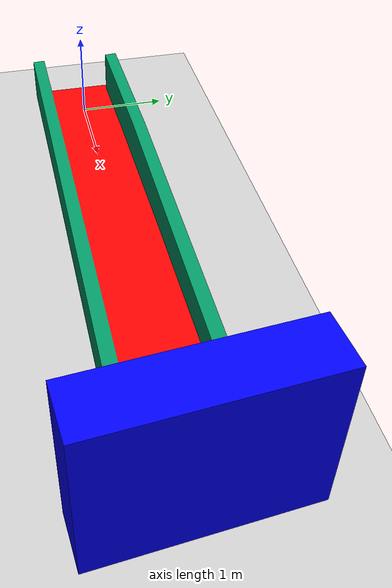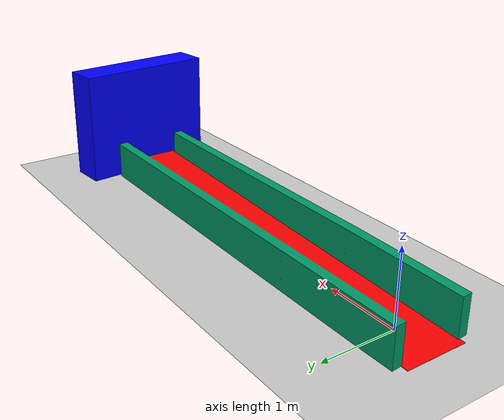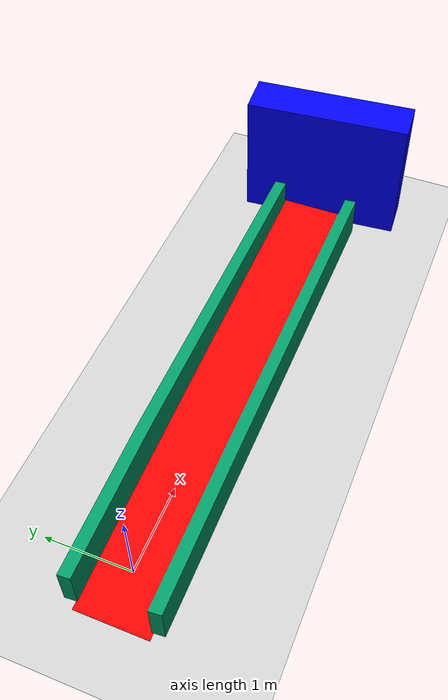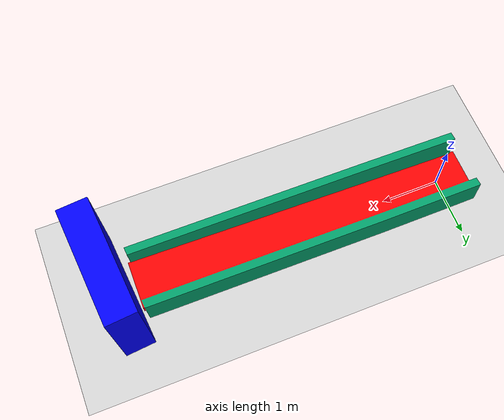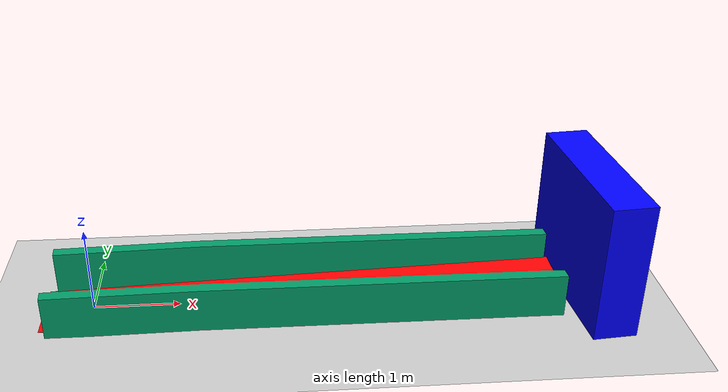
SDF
<sdf version="1.6">
 <world name="default">
  <scene><ambient>0.4 0.4 0.4 1</ambient><background>0.7 0.7 0.7 1</background><shadows>1</shadows></scene>
  <light name="sun" type="directional">
   <pose>0 0 10 0 -0 0</pose>
   <diffuse>0.8 0.8 0.8 1</diffuse>
   <specular>0.2 0.2 0.2 1</specular>
   <attenuation>
    <range>1000</range>
    <constant>0.9</constant>
    <linear>0.01</linear>
    <quadratic>0.001</quadratic>
   </attenuation>
   <direction>-0.5 0.1 -0.9</direction>
  </light>
  <model name="ground_plane">
   <static>1</static>
   <link name="link">
    <collision name="collision">
     <geometry><plane><normal>0 0 1</normal><size>100 100</size></plane></geometry>
     <surface>
      <contact><collide_bitmask>65535</collide_bitmask></contact>
      <friction><ode><mu>100</mu><mu2>50</mu2></ode></friction>
     </surface>
    </collision>
    <visual name="visual">
     <cast_shadows>0</cast_shadows>
     <geometry><plane><normal>0 0 1</normal><size>100 100</size></plane></geometry>
     <material>
      <script><uri>file://media/materials/scripts/gazebo.material</uri><name>Gazebo/Grey</name></script>
     </material>
    </visual>
   </link>
  </model>
  <model name="caixa_azul">
   <link name="link">
    <inertial>
     <mass>5.24856</mass>
     <inertia><ixx>1.24839</ixx><ixy>0</ixy><ixz>0</ixz><iyy>2.87035</iyy><iyz>0</iyz><izz>1.84376</izz></inertia>
    </inertial>
    <visual name="visual">
     <geometry><box><size>1.99045 0.503545 1.61267</size></box></geometry>
     <material>
      <script><name>Gazebo/Grey</name><uri>file://media/materials/scripts/gazebo.material</uri></script>
      <shader type="vertex"><normal_map>__default__</normal_map></shader>
      <ambient>0 0 1 1</ambient>
      <diffuse>0 0 1 1</diffuse>
      <specular>0 0 1 1</specular>
      <emissive>0 0 1 1</emissive>
     </material>
    </visual>
    <collision name="collision">
     <geometry><box><size>1.99045 0.503545 1.61267</size></box></geometry>
     <surface>
      <friction>
       <ode><mu>1</mu><mu2>1</mu2><fdir1>0 0 0</fdir1><slip1>0</slip1><slip2>0</slip2></ode>
       <torsional>
        <coefficient>1</coefficient>
        <patch_radius>0</patch_radius>
        <surface_radius>0</surface_radius>
        <use_patch_radius>1</use_patch_radius>
        <ode><slip>0</slip></ode>
       </torsional>
      </friction>
      <bounce><restitution_coefficient>0</restitution_coefficient><threshold>1e+06</threshold></bounce>
      <contact>
       <collide_without_contact>0</collide_without_contact>
       <collide_without_contact_bitmask>1</collide_without_contact_bitmask>
       <collide_bitmask>1</collide_bitmask>
       <ode>
        <soft_cfm>0</soft_cfm>
        <soft_erp>0.2</soft_erp>
        <kp>1e+13</kp>
        <kd>1</kd>
        <max_vel>0.01</max_vel>
        <min_depth>0</min_depth>
       </ode>
       <bullet>
        <split_impulse>1</split_impulse>
        <split_impulse_penetration_threshold>-0.01</split_impulse_penetration_threshold>
        <soft_cfm>0</soft_cfm>
        <soft_erp>0.2</soft_erp>
        <kp>1e+13</kp>
        <kd>1</kd>
       </bullet>
      </contact>
     </surface>
    </collision>
   </link>
   <static>0</static>
   <pose>5.74 -0.05 0.806335 -0 -0 -1.4848</pose>
  </model>
  <physics name="default_physics" default="0" type="ode">
   <real_time_update_rate>1000</real_time_update_rate>
   <max_step_size>0.001</max_step_size>
   <real_time_factor>1</real_time_factor>
   <ode>
    <solver>
     <type>quick</type>
     <iters>150</iters>
     <precon_iters>0</precon_iters>
     <sor>1.4</sor>
     <use_dynamic_moi_rescaling>1</use_dynamic_moi_rescaling>
    </solver>
    <constraints>
     <cfm>1e-05</cfm>
     <erp>0.2</erp>
     <contact_max_correcting_vel>2000</contact_max_correcting_vel>
     <contact_surface_layer>0.01</contact_surface_layer>
    </constraints>
   </ode>
  </physics>
  <gravity>0 0 -9.8</gravity>
  <magnetic_field>6e-06 2.3e-05 -4.2e-05</magnetic_field>
  <atmosphere type="adiabatic"/>
  <audio><device>default</device></audio>
  <spherical_coordinates>
   <surface_model>EARTH_WGS84</surface_model>
   <latitude_deg>0</latitude_deg>
   <longitude_deg>0</longitude_deg>
   <elevation>0</elevation>
   <heading_deg>0</heading_deg>
  </spherical_coordinates>
  <model name="rampa">
   <link name="link">
    <inertial>
     <mass>1</mass>
     <inertia><ixx>1</ixx><ixy>0</ixy><ixz>0</ixz><iyy>1</iyy><iyz>0</iyz><izz>1</izz></inertia>
    </inertial>
    <visual name="visual">
     <geometry><mesh><uri>model://rampinha/meshes/rampa.dae</uri></mesh></geometry>
     <material><shader type="vertex"><normal_map>__default__</normal_map></shader></material>
    </visual>
    <collision name="collision">
     <geometry>
      <mesh>
       <uri>/home/borg/catkin_ws/src/my_simulation/models/rampinha/meshes/rampa.dae</uri>
       <scale>1 1 1</scale>
      </mesh>
     </geometry>
     <surface>
      <friction>
       <ode><mu>1</mu><mu2>1</mu2><fdir1>0 0 0</fdir1><slip1>0</slip1><slip2>0</slip2></ode>
       <torsional>
        <coefficient>1</coefficient>
        <patch_radius>0</patch_radius>
        <surface_radius>0</surface_radius>
        <use_patch_radius>1</use_patch_radius>
        <ode><slip>0</slip></ode>
       </torsional>
      </friction>
      <bounce><restitution_coefficient>0</restitution_coefficient><threshold>1e+06</threshold></bounce>
      <contact>
       <collide_without_contact>0</collide_without_contact>
       <collide_without_contact_bitmask>1</collide_without_contact_bitmask>
       <collide_bitmask>1</collide_bitmask>
       <ode>
        <soft_cfm>0</soft_cfm>
        <soft_erp>0.2</soft_erp>
        <kp>4e+12</kp>
        <kd>1</kd>
        <max_vel>0.01</max_vel>
        <min_depth>0</min_depth>
       </ode>
       <bullet>
        <split_impulse>1</split_impulse>
        <split_impulse_penetration_threshold>-0.01</split_impulse_penetration_threshold>
        <soft_cfm>0</soft_cfm>
        <soft_erp>0.2</soft_erp>
        <kp>4e+12</kp>
        <kd>1</kd>
       </bullet>
      </contact>
     </surface>
    </collision>
   </link>
   <static>1</static>
  </model>
 </world>
</sdf>
